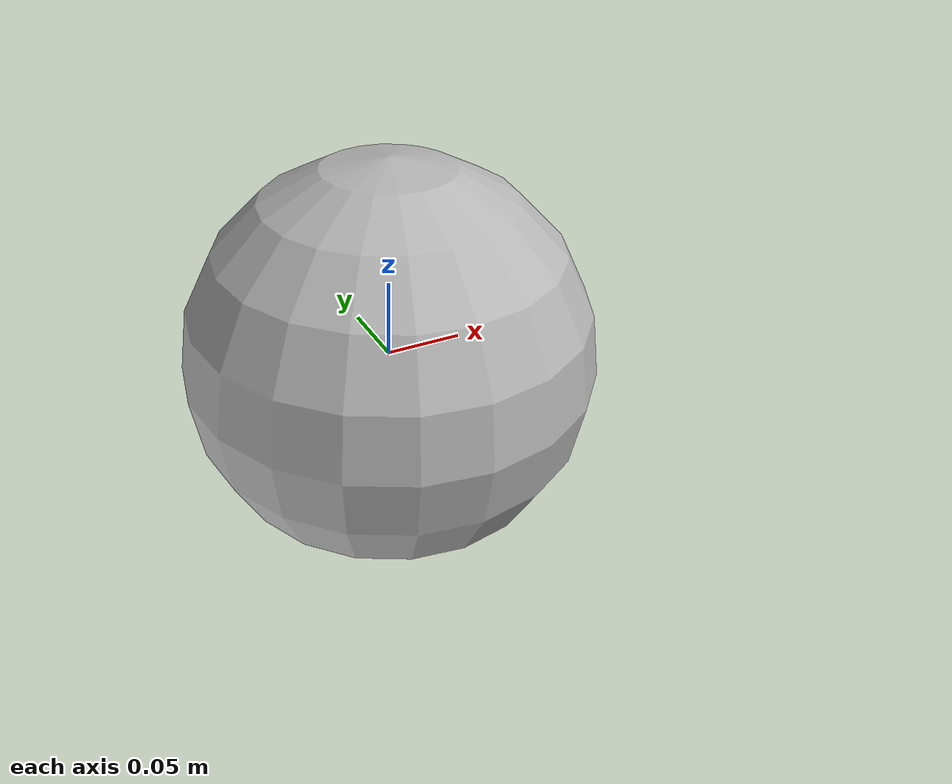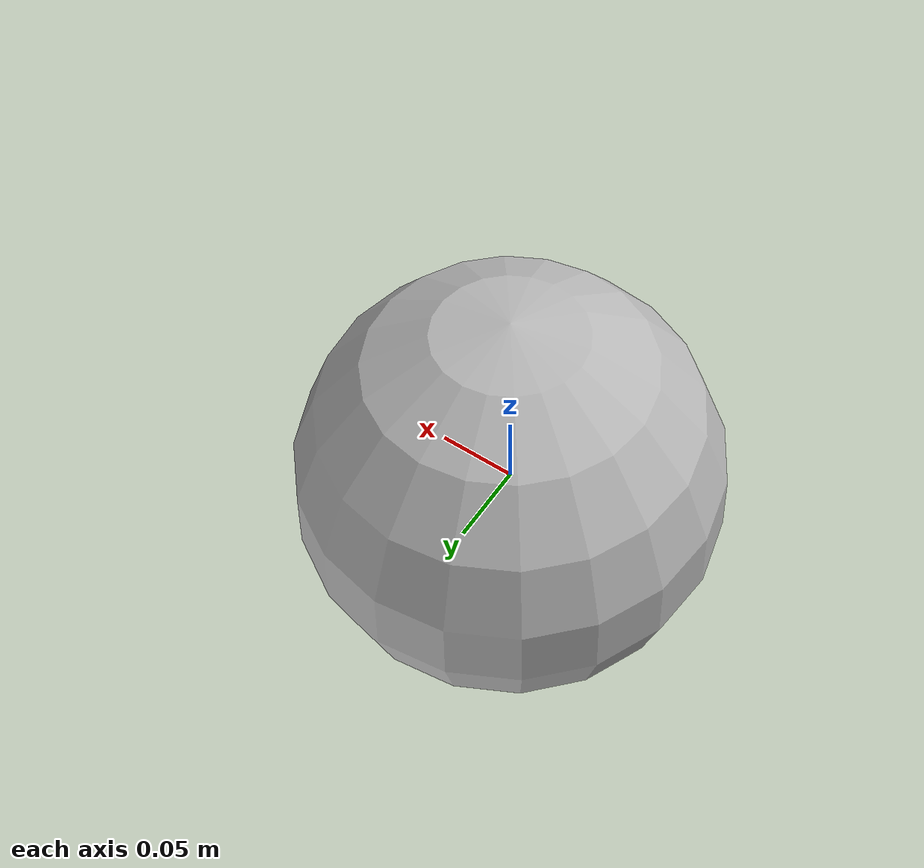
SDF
<?xml version="1.0" ?>
<sdf version="1.5">
  <model name="basketball">
    <static>false</static>
    <link name="ball">
      <inertial>
        <mass>0.25</mass>
        <!-- inertia based on solid sphere 2/5 mr^2 -->
        <inertia>
          <ixx>0.00169</ixx>
          <iyy>0.00169</iyy>
          <izz>0.00169</izz>
          <ixy>0</ixy>
          <ixz>0</ixz>
          <iyz>0</iyz>
        </inertia>
      </inertial>
      <visual name="visual">
        <geometry>
          <sphere>
            <radius>0.13</radius>
          </sphere>
        </geometry>
      </visual>
      <collision name="collision">
        <geometry>
          <sphere>
            <radius>0.13</radius>
          </sphere>
        </geometry>
        <surface>
          <friction>
            <bullet>
              <mu>1</mu>
              <mu2>1</mu2>
            </bullet>
          </friction>
          <bounce>
            <restitution_coefficient>0.01</restitution_coefficient>
            <threshold>0.01</threshold>
          </bounce>
          <contact>
            <bullet>
              <kp>1e12</kp>
              <kd>1</kd>
              <split_impulse>1</split_impulse>
              <split_impulse_penetration_threshold>-0.1</split_impulse_penetration_threshold>
            </bullet>
          </contact>
        </surface>
      </collision>
    </link>
  </model>
</sdf>
